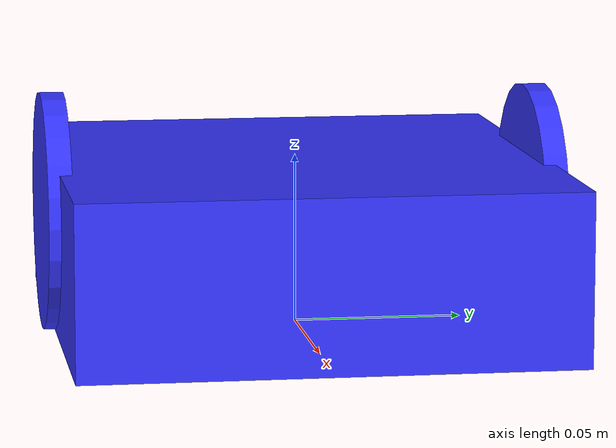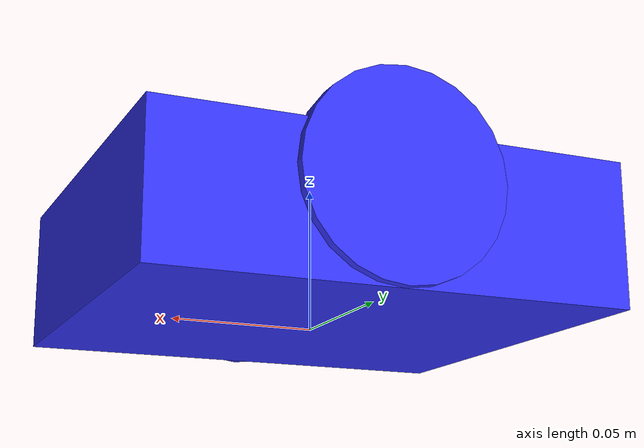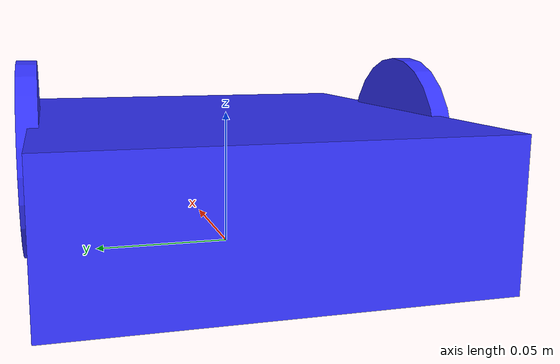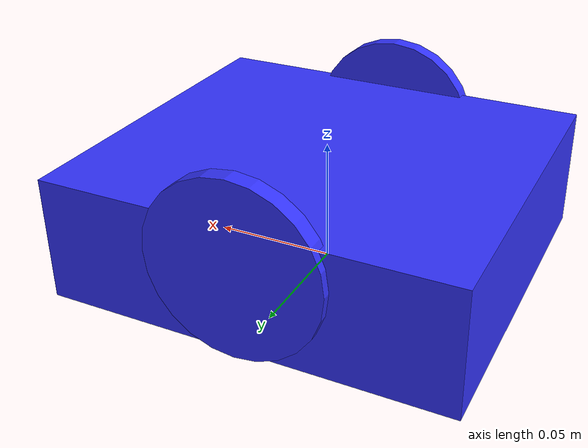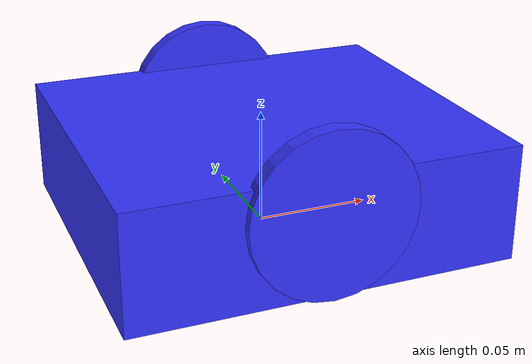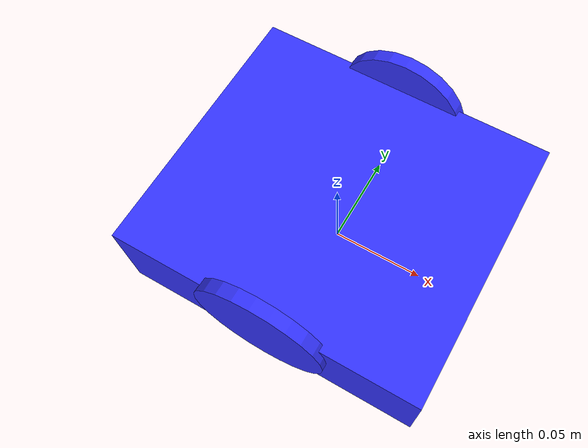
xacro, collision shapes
<?xml version="1.0"?>
<robot xmlns:xacro="http://www.ros.org/wiki/xacro">

    <xacro:include filename="inertial_macros.xacro"/>

    <xacro:property name="chassis_length" value="0.163"/>
    <xacro:property name="chassis_width" value="0.144"/>
    <xacro:property name="chassis_height" value="0.05"/>
    <xacro:property name="chassis_mass" value="0.4"/>

    <xacro:property name="wheel_radius" value="0.035"/>
    <xacro:property name="wheel_thickness" value="0.007"/>
    <xacro:property name="wheel_mass" value="0.029"/>

    <material name="white">
        <color rgba="1 1 1 1" />
    </material>

    <material name="orange">
        <color rgba="1 0.3 0.1 1"/>
    </material>

    <material name="blue">
        <color rgba="0.2 0.2 1 1"/>
    </material>

    <material name="black">
        <color rgba="0 0 0 1"/>
    </material>

    <material name="light_black">
        <color rgba="0.1 0.1 0.1 1"/>
    </material>

    <material name="red">
        <color rgba="1 0.1 0.1 1"/>
    </material>

    <!-- BASE LINK -->

    <link name="base_link">
    </link>

    <!-- BASE_FOOTPRINT LINK -->

    <joint name="base_footprint_joint" type="fixed">
        <parent link="base_link"/>
        <child link="base_footprint"/>
        <origin xyz="0 0 0" rpy="0 0 0"/>
    </joint>

    <link name="base_footprint">
    </link>

    <!-- CHASSIS LINK -->

    <joint name="chassis_joint" type="fixed">
        <parent link="base_link"/>
        <child link="chassis"/>
        <origin xyz="${-chassis_length/2} 0 0"/>
    </joint>

    <link name="chassis">
        <visual>
            <origin xyz="${chassis_length/2} 0 0"/>
            <geometry>
                <mesh filename="package://romi_base/description/meshes/romi_chassis.stl" scale="1 1 1"/>
            </geometry>
            <material name="blue"/>
        </visual>
        <collision>
            <origin xyz="${chassis_length/2} 0 ${chassis_height/2}"/>
            <geometry>
                <box size="${chassis_length} ${chassis_width} ${chassis_height}"/>
            </geometry>
        </collision>
        <xacro:inertial_box mass="${chassis_mass}" x="${chassis_length}" y="${chassis_width}" z="${chassis_height/2}">
            <origin xyz="${chassis_length/2} 0 .015" rpy="0 0 0"/>
        </xacro:inertial_box>
    </link>

    <gazebo reference="chassis">
        <material>Gazebo/Orange</material>
        <mu1 value="0.001"/>
        <mu2 value="0.001"/>
    </gazebo>

    <!-- LEFT WHEEL LINK -->

    <joint name="left_wheel_joint" type="continuous">
        <parent link="base_link"/>
        <child link="left_wheel"/>
        <origin xyz="0 ${chassis_width/2} ${wheel_radius}" rpy="-${pi/2} 0 0"/>
        <axis xyz="0 0 1"/>
    </joint>

    <link name="left_wheel">
        <visual>
            <geometry>
                <mesh filename="package://romi_base/description/meshes/left_wheel2.stl" scale="1 1 1"/>
            </geometry>
            <material name="blue"/>
        </visual>
        <collision>
            <geometry>
                <cylinder radius="${wheel_radius}" length="${wheel_thickness}"/>
            </geometry>
        </collision>
        <xacro:inertial_cylinder mass="${wheel_mass}" length="${wheel_thickness}" radius="${wheel_radius}">
            <origin xyz="0 0 0" rpy="0 0 0"/>
        </xacro:inertial_cylinder>
    </link>

    <gazebo reference="left_wheel">
        <material>Gazebo/Blue</material>
    </gazebo>

    <!-- RIGHT WHEEL LINK -->

    <joint name="right_wheel_joint" type="continuous">
        <parent link="base_link"/>
        <child link="right_wheel"/>
        <origin xyz="0 ${-chassis_width/2} ${wheel_radius}" rpy="${pi/2} 0 0"/>
        <axis xyz="0 0 -1"/>
    </joint>

    <link name="right_wheel">
        <visual>
            <geometry>
                <mesh filename="package://romi_base/description/meshes/right_wheel2.stl" scale="1 1 1"/>
            </geometry>
            <material name="blue"/>
        </visual>
        <collision>
            <geometry>
                <cylinder radius="${wheel_radius}" length="${wheel_thickness}"/>
            </geometry>
        </collision>
        <xacro:inertial_cylinder mass="${wheel_mass}" length="${wheel_thickness}" radius="${wheel_radius}">
            <origin xyz="0 0 0" rpy="0 0 0"/>
        </xacro:inertial_cylinder>
    </link>

    <gazebo reference="right_wheel">
        <material>Gazebo/Blue</material>
    </gazebo>

</robot>
